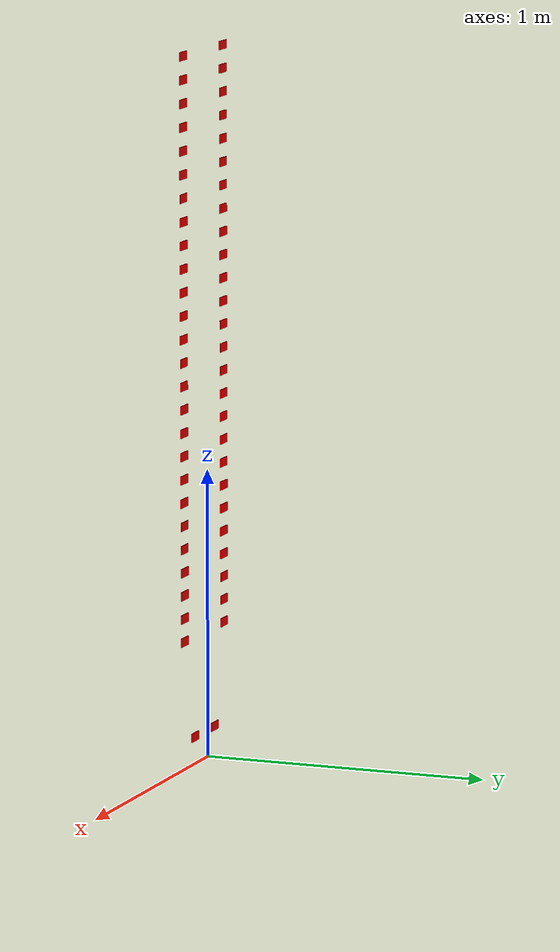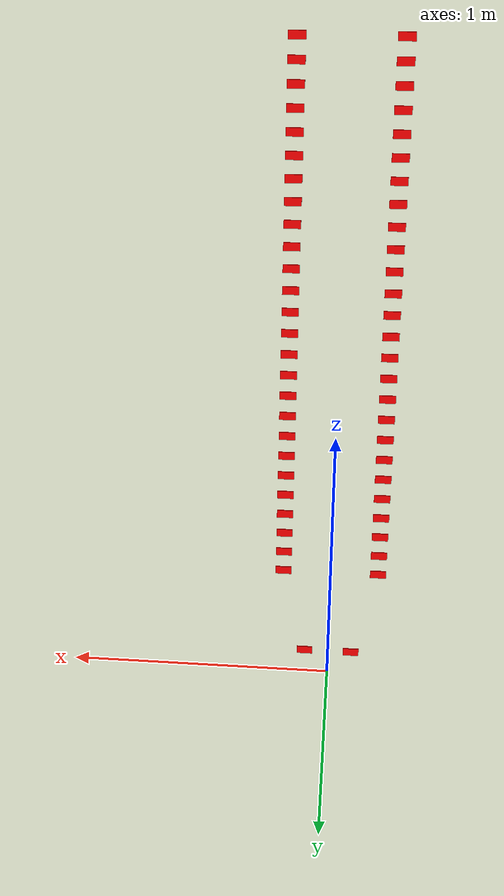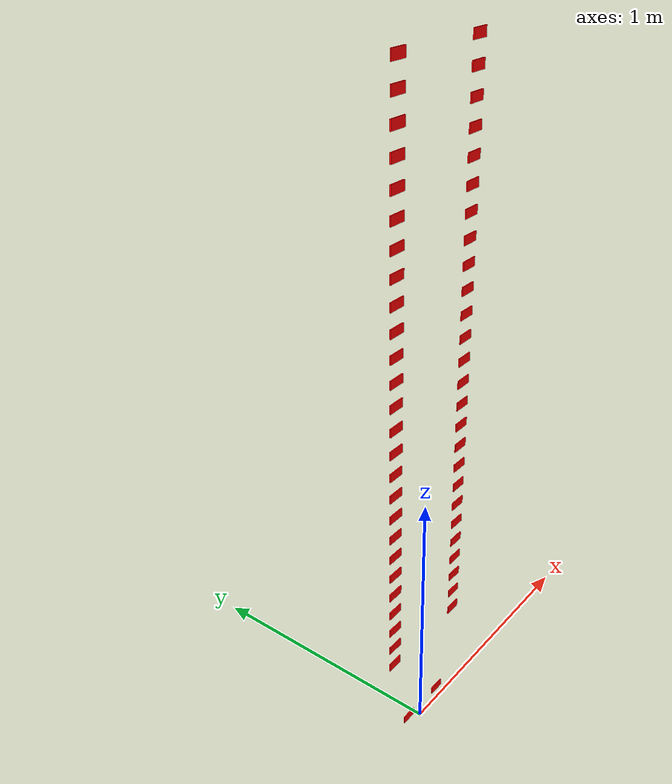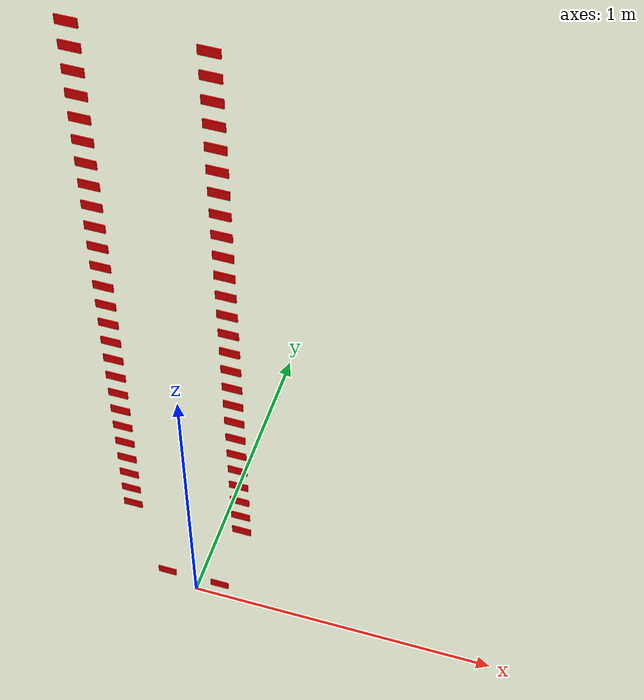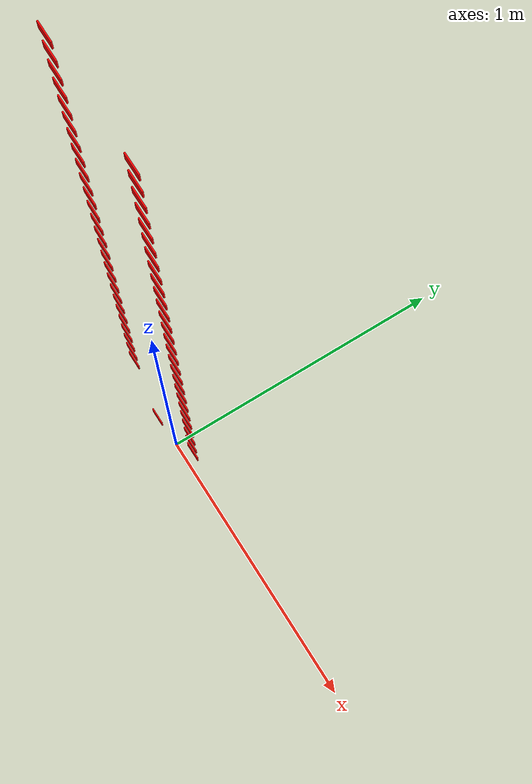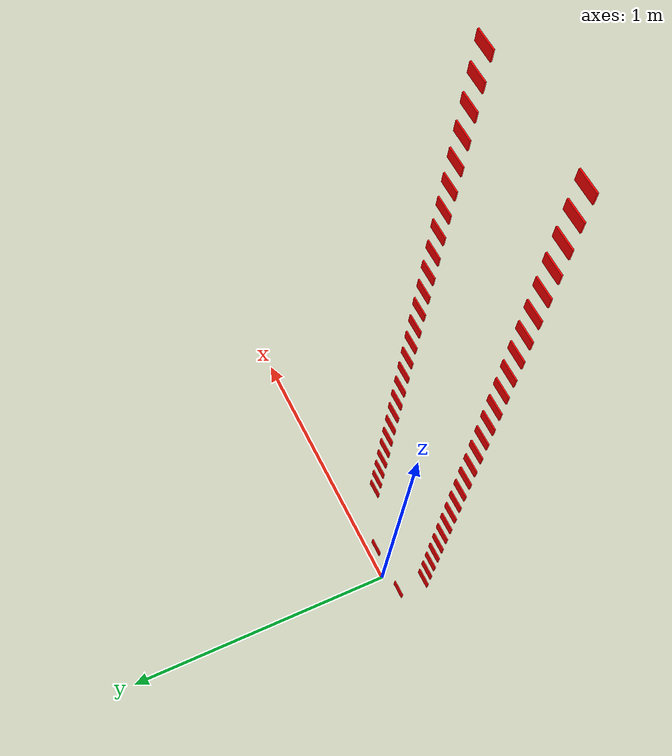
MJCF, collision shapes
<mujoco>
  <compiler angle="radian" autolimits="true"/>
  <default>

    <!-- Collision Class -->
    <default class="hold_collision">
      <geom type="box"
            pos="0 -0.013 0.012"
            size="0.03 0.015 0.002"
            contype="1" conaffinity="1"
            rgba="1 0 0 1"
            solimp="0.99 0.99 0.01"
            solref="0.01 1"
            mass="0"/>
    </default>

    <!-- Visual Mesh Hold -->
    <default class="hold_visual">
      <geom type="mesh"
            contype="0" conaffinity="0"/>
    </default>

  </default>

  <asset>
    <mesh scale="0.4 0.3 0.4" name="Jug1Center" file="assets/jug3_center.obj"/>
  </asset>

  <worldbody>

  <!-- Foot holds (for reference) -->
  <body name="foot_l_start" pos="-0.09 0.0 0.1" quat="0.70710678 0.70710678 0.0 0.0">
    <geom class="hold_visual" name="foot_l_start_geom" mesh="Jug1Center" rgba="0.8 0.2 0.8 1" />
    <geom class="hold_collision"/>
  </body>
  <body name="foot_r_start" pos="0.09 0.0 0.1" quat="0.70710678 0.70710678 0.0 0.0">
    <geom class="hold_visual" name="foot_r_start_geom" mesh="Jug1Center" rgba="0 1 0 1" />
    <geom class="hold_collision"/>
  </body>

  <!-- Starting holds - match initial hand positions -->
  <body name="hold_L1" pos="-0.18 0.0 0.45" quat="0.70710678 0.70710678 0.0 0.0">
    <geom class="hold_visual" name="hold_L1_geom" mesh="Jug1Center" rgba="0.8 0.2 0.8 1" />
    <geom class="hold_collision"/>
  </body>
  <body name="hold_R1" pos="0.18 0.0 0.45" quat="0.70710678 0.70710678 0.0 0.0">
    <geom class="hold_visual" name="hold_R1_geom" mesh="Jug1Center" rgba="0 1 0 1" />
    <geom class="hold_collision"/>
  </body>

  <!-- Climbing sequence - alternating left/right, 8cm step height -->
  <body name="hold_L2" pos="-0.18 0.0 0.53" quat="0.70710678 0.70710678 0.0 0.0">
    <geom class="hold_visual" name="hold_L2_geom" mesh="Jug1Center" rgba="0.8 0.2 0.8 1" />
    <geom class="hold_collision"/>
  </body>
  <body name="hold_R2" pos="0.18 0.0 0.53" quat="0.70710678 0.70710678 0.0 0.0">
    <geom class="hold_visual" name="hold_R2_geom" mesh="Jug1Center" rgba="0 1 0 1" />
    <geom class="hold_collision"/>
  </body>

  <body name="hold_L3" pos="-0.18 0.0 0.61" quat="0.70710678 0.70710678 0.0 0.0">
    <geom class="hold_visual" name="hold_L3_geom" mesh="Jug1Center" rgba="0.8 0.2 0.8 1" />
    <geom class="hold_collision"/>
  </body>
  <body name="hold_R3" pos="0.18 0.0 0.61" quat="0.70710678 0.70710678 0.0 0.0">
    <geom class="hold_visual" name="hold_R3_geom" mesh="Jug1Center" rgba="0 1 0 1" />
    <geom class="hold_collision"/>
  </body>

  <body name="hold_L4" pos="-0.18 0.0 0.69" quat="0.70710678 0.70710678 0.0 0.0">
    <geom class="hold_visual" name="hold_L4_geom" mesh="Jug1Center" rgba="0.8 0.2 0.8 1" />
    <geom class="hold_collision"/>
  </body>
  <body name="hold_R4" pos="0.18 0.0 0.69" quat="0.70710678 0.70710678 0.0 0.0">
    <geom class="hold_visual" name="hold_R4_geom" mesh="Jug1Center" rgba="0 1 0 1" />
    <geom class="hold_collision"/>
  </body>

  <body name="hold_L5" pos="-0.18 0.0 0.77" quat="0.70710678 0.70710678 0.0 0.0">
    <geom class="hold_visual" name="hold_L5_geom" mesh="Jug1Center" rgba="0.8 0.2 0.8 1" />
    <geom class="hold_collision"/>
  </body>
  <body name="hold_R5" pos="0.18 0.0 0.77" quat="0.70710678 0.70710678 0.0 0.0">
    <geom class="hold_visual" name="hold_R5_geom" mesh="Jug1Center" rgba="0 1 0 1" />
    <geom class="hold_collision"/>
  </body>

  <body name="hold_L6" pos="-0.18 0.0 0.85" quat="0.70710678 0.70710678 0.0 0.0">
    <geom class="hold_visual" name="hold_L6_geom" mesh="Jug1Center" rgba="0.8 0.2 0.8 1" />
    <geom class="hold_collision"/>
  </body>
  <body name="hold_R6" pos="0.18 0.0 0.85" quat="0.70710678 0.70710678 0.0 0.0">
    <geom class="hold_visual" name="hold_R6_geom" mesh="Jug1Center" rgba="0 1 0 1" />
    <geom class="hold_collision"/>
  </body>

  <body name="hold_L7" pos="-0.18 0.0 0.93" quat="0.70710678 0.70710678 0.0 0.0">
    <geom class="hold_visual" name="hold_L7_geom" mesh="Jug1Center" rgba="0.8 0.2 0.8 1" />
    <geom class="hold_collision"/>
  </body>
  <body name="hold_R7" pos="0.18 0.0 0.93" quat="0.70710678 0.70710678 0.0 0.0">
    <geom class="hold_visual" name="hold_R7_geom" mesh="Jug1Center" rgba="0 1 0 1" />
    <geom class="hold_collision"/>
  </body>

  <body name="hold_L8" pos="-0.18 0.0 1.01" quat="0.70710678 0.70710678 0.0 0.0">
    <geom class="hold_visual" name="hold_L8_geom" mesh="Jug1Center" rgba="0.8 0.2 0.8 1" />
    <geom class="hold_collision"/>
  </body>
  <body name="hold_R8" pos="0.18 0.0 1.01" quat="0.70710678 0.70710678 0.0 0.0">
    <geom class="hold_visual" name="hold_R8_geom" mesh="Jug1Center" rgba="0 1 0 1" />
    <geom class="hold_collision"/>
  </body>

  <body name="hold_L9" pos="-0.18 0.0 1.09" quat="0.70710678 0.70710678 0.0 0.0">
    <geom class="hold_visual" name="hold_L9_geom" mesh="Jug1Center" rgba="0.8 0.2 0.8 1" />
    <geom class="hold_collision"/>
  </body>
  <body name="hold_R9" pos="0.18 0.0 1.09" quat="0.70710678 0.70710678 0.0 0.0">
    <geom class="hold_visual" name="hold_R9_geom" mesh="Jug1Center" rgba="0 1 0 1" />
    <geom class="hold_collision"/>
  </body>

  <body name="hold_L10" pos="-0.18 0.0 1.17" quat="0.70710678 0.70710678 0.0 0.0">
    <geom class="hold_visual" name="hold_L10_geom" mesh="Jug1Center" rgba="0.8 0.2 0.8 1" />
    <geom class="hold_collision"/>
  </body>
  <body name="hold_R10" pos="0.18 0.0 1.17" quat="0.70710678 0.70710678 0.0 0.0">
    <geom class="hold_visual" name="hold_R10_geom" mesh="Jug1Center" rgba="0 1 0 1" />
    <geom class="hold_collision"/>
  </body>

  <!-- Extended climbing - higher holds -->
  <body name="hold_L11" pos="-0.18 0.0 1.25" quat="0.70710678 0.70710678 0.0 0.0">
    <geom class="hold_visual" name="hold_L11_geom" mesh="Jug1Center" rgba="0.8 0.2 0.8 1" />
    <geom class="hold_collision"/>
  </body>
  <body name="hold_R11" pos="0.18 0.0 1.25" quat="0.70710678 0.70710678 0.0 0.0">
    <geom class="hold_visual" name="hold_R11_geom" mesh="Jug1Center" rgba="0 1 0 1" />
    <geom class="hold_collision"/>
  </body>

  <body name="hold_L12" pos="-0.18 0.0 1.33" quat="0.70710678 0.70710678 0.0 0.0">
    <geom class="hold_visual" name="hold_L12_geom" mesh="Jug1Center" rgba="0.8 0.2 0.8 1" />
    <geom class="hold_collision"/>
  </body>
  <body name="hold_R12" pos="0.18 0.0 1.33" quat="0.70710678 0.70710678 0.0 0.0">
    <geom class="hold_visual" name="hold_R12_geom" mesh="Jug1Center" rgba="0 1 0 1" />
    <geom class="hold_collision"/>
  </body>

  <body name="hold_L13" pos="-0.18 0.0 1.41" quat="0.70710678 0.70710678 0.0 0.0">
    <geom class="hold_visual" name="hold_L13_geom" mesh="Jug1Center" rgba="0.8 0.2 0.8 1" />
    <geom class="hold_collision"/>
  </body>
  <body name="hold_R13" pos="0.18 0.0 1.41" quat="0.70710678 0.70710678 0.0 0.0">
    <geom class="hold_visual" name="hold_R13_geom" mesh="Jug1Center" rgba="0 1 0 1" />
    <geom class="hold_collision"/>
  </body>

  <body name="hold_L14" pos="-0.18 0.0 1.49" quat="0.70710678 0.70710678 0.0 0.0">
    <geom class="hold_visual" name="hold_L14_geom" mesh="Jug1Center" rgba="0.8 0.2 0.8 1" />
    <geom class="hold_collision"/>
  </body>
  <body name="hold_R14" pos="0.18 0.0 1.49" quat="0.70710678 0.70710678 0.0 0.0">
    <geom class="hold_visual" name="hold_R14_geom" mesh="Jug1Center" rgba="0 1 0 1" />
    <geom class="hold_collision"/>
  </body>

  <body name="hold_L15" pos="-0.18 0.0 1.57" quat="0.70710678 0.70710678 0.0 0.0">
    <geom class="hold_visual" name="hold_L15_geom" mesh="Jug1Center" rgba="0.8 0.2 0.8 1" />
    <geom class="hold_collision"/>
  </body>
  <body name="hold_R15" pos="0.18 0.0 1.57" quat="0.70710678 0.70710678 0.0 0.0">
    <geom class="hold_visual" name="hold_R15_geom" mesh="Jug1Center" rgba="0 1 0 1" />
    <geom class="hold_collision"/>
  </body>

  <body name="hold_L16" pos="-0.18 0.0 1.65" quat="0.70710678 0.70710678 0.0 0.0">
    <geom class="hold_visual" name="hold_L16_geom" mesh="Jug1Center" rgba="0.8 0.2 0.8 1" />
    <geom class="hold_collision"/>
  </body>
  <body name="hold_R16" pos="0.18 0.0 1.65" quat="0.70710678 0.70710678 0.0 0.0">
    <geom class="hold_visual" name="hold_R16_geom" mesh="Jug1Center" rgba="0 1 0 1" />
    <geom class="hold_collision"/>
  </body>

  <body name="hold_L17" pos="-0.18 0.0 1.73" quat="0.70710678 0.70710678 0.0 0.0">
    <geom class="hold_visual" name="hold_L17_geom" mesh="Jug1Center" rgba="0.8 0.2 0.8 1" />
    <geom class="hold_collision"/>
  </body>
  <body name="hold_R17" pos="0.18 0.0 1.73" quat="0.70710678 0.70710678 0.0 0.0">
    <geom class="hold_visual" name="hold_R17_geom" mesh="Jug1Center" rgba="0 1 0 1" />
    <geom class="hold_collision"/>
  </body>

  <body name="hold_L18" pos="-0.18 0.0 1.81" quat="0.70710678 0.70710678 0.0 0.0">
    <geom class="hold_visual" name="hold_L18_geom" mesh="Jug1Center" rgba="0.8 0.2 0.8 1" />
    <geom class="hold_collision"/>
  </body>
  <body name="hold_R18" pos="0.18 0.0 1.81" quat="0.70710678 0.70710678 0.0 0.0">
    <geom class="hold_visual" name="hold_R18_geom" mesh="Jug1Center" rgba="0 1 0 1" />
    <geom class="hold_collision"/>
  </body>

  <body name="hold_L19" pos="-0.18 0.0 1.89" quat="0.70710678 0.70710678 0.0 0.0">
    <geom class="hold_visual" name="hold_L19_geom" mesh="Jug1Center" rgba="0.8 0.2 0.8 1" />
    <geom class="hold_collision"/>
  </body>
  <body name="hold_R19" pos="0.18 0.0 1.89" quat="0.70710678 0.70710678 0.0 0.0">
    <geom class="hold_visual" name="hold_R19_geom" mesh="Jug1Center" rgba="0 1 0 1" />
    <geom class="hold_collision"/>
  </body>

  <body name="hold_L20" pos="-0.18 0.0 1.97" quat="0.70710678 0.70710678 0.0 0.0">
    <geom class="hold_visual" name="hold_L20_geom" mesh="Jug1Center" rgba="0.8 0.2 0.8 1" />
    <geom class="hold_collision"/>
  </body>
  <body name="hold_R20" pos="0.18 0.0 1.97" quat="0.70710678 0.70710678 0.0 0.0">
    <geom class="hold_visual" name="hold_R20_geom" mesh="Jug1Center" rgba="0 1 0 1" />
    <geom class="hold_collision"/>
  </body>

  <body name="hold_L21" pos="-0.18 0.0 2.05" quat="0.70710678 0.70710678 0.0 0.0">
    <geom class="hold_visual" name="hold_L21_geom" mesh="Jug1Center" rgba="0.8 0.2 0.8 1" />
    <geom class="hold_collision"/>
  </body>
  <body name="hold_R21" pos="0.18 0.0 2.05" quat="0.70710678 0.70710678 0.0 0.0">
    <geom class="hold_visual" name="hold_R21_geom" mesh="Jug1Center" rgba="0 1 0 1" />
    <geom class="hold_collision"/>
  </body>

  <body name="hold_L22" pos="-0.18 0.0 2.13" quat="0.70710678 0.70710678 0.0 0.0">
    <geom class="hold_visual" name="hold_L22_geom" mesh="Jug1Center" rgba="0.8 0.2 0.8 1" />
    <geom class="hold_collision"/>
  </body>
  <body name="hold_R22" pos="0.18 0.0 2.13" quat="0.70710678 0.70710678 0.0 0.0">
    <geom class="hold_visual" name="hold_R22_geom" mesh="Jug1Center" rgba="0 1 0 1" />
    <geom class="hold_collision"/>
  </body>

  <body name="hold_L23" pos="-0.18 0.0 2.21" quat="0.70710678 0.70710678 0.0 0.0">
    <geom class="hold_visual" name="hold_L23_geom" mesh="Jug1Center" rgba="0.8 0.2 0.8 1" />
    <geom class="hold_collision"/>
  </body>
  <body name="hold_R23" pos="0.18 0.0 2.21" quat="0.70710678 0.70710678 0.0 0.0">
    <geom class="hold_visual" name="hold_R23_geom" mesh="Jug1Center" rgba="0 1 0 1" />
    <geom class="hold_collision"/>
  </body>

  <body name="hold_L24" pos="-0.18 0.0 2.29" quat="0.70710678 0.70710678 0.0 0.0">
    <geom class="hold_visual" name="hold_L24_geom" mesh="Jug1Center" rgba="0.8 0.2 0.8 1" />
    <geom class="hold_collision"/>
  </body>
  <body name="hold_R24" pos="0.18 0.0 2.29" quat="0.70710678 0.70710678 0.0 0.0">
    <geom class="hold_visual" name="hold_R24_geom" mesh="Jug1Center" rgba="0 1 0 1" />
    <geom class="hold_collision"/>
  </body>

  <body name="hold_L25" pos="-0.18 0.0 2.37" quat="0.70710678 0.70710678 0.0 0.0">
    <geom class="hold_visual" name="hold_L25_geom" mesh="Jug1Center" rgba="0.8 0.2 0.8 1" />
    <geom class="hold_collision"/>
  </body>
  <body name="hold_R25" pos="0.18 0.0 2.37" quat="0.70710678 0.70710678 0.0 0.0">
    <geom class="hold_visual" name="hold_R25_geom" mesh="Jug1Center" rgba="0 1 0 1" />
    <geom class="hold_collision"/>
  </body>

  <!-- Final holds near the peak (GOLD colored!) -->
  <body name="hold_L26" pos="-0.18 0.0 2.45" quat="0.70710678 0.70710678 0.0 0.0">
    <geom class="hold_visual" name="hold_L26_geom" mesh="Jug1Center" rgba="1.0 0.8 0.0 1" />
    <geom class="hold_collision"/>
  </body>
  <body name="hold_R26" pos="0.18 0.0 2.45" quat="0.70710678 0.70710678 0.0 0.0">
    <geom class="hold_visual" name="hold_R26_geom" mesh="Jug1Center" rgba="1.0 0.8 0.0 1" />
    <geom class="hold_collision"/>
  </body>

</worldbody>

</mujoco>
